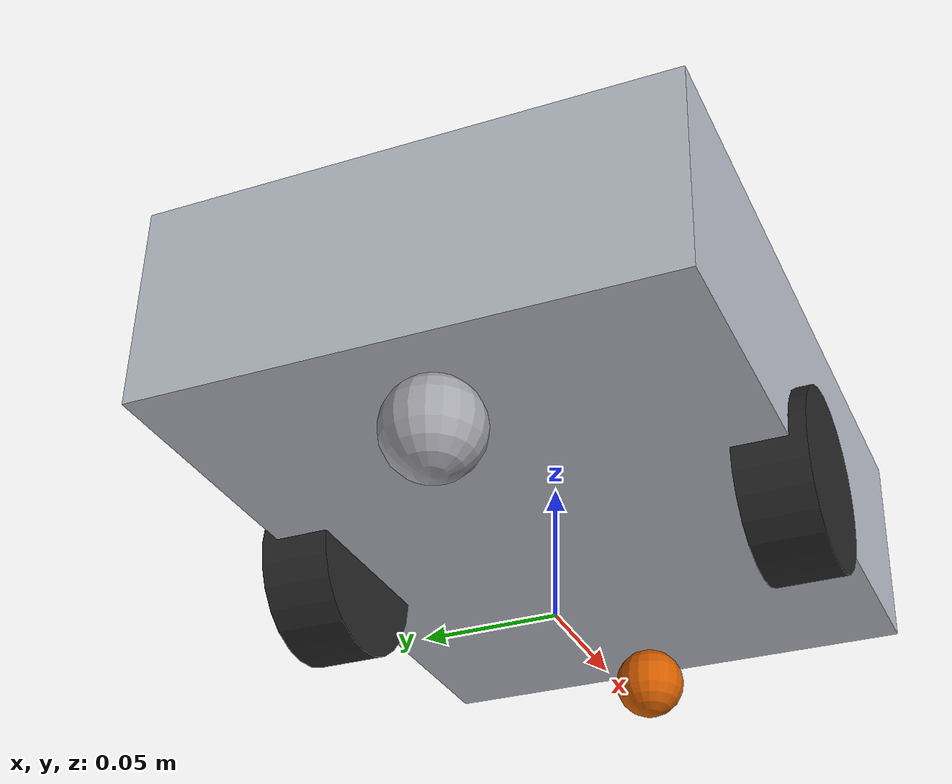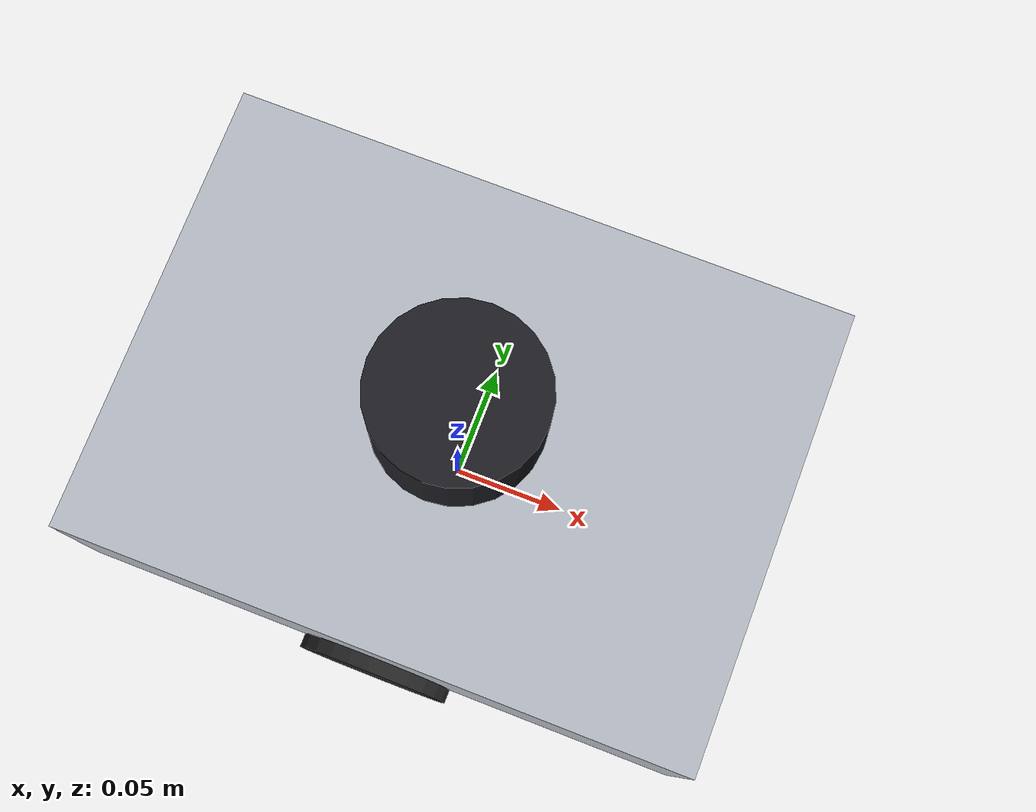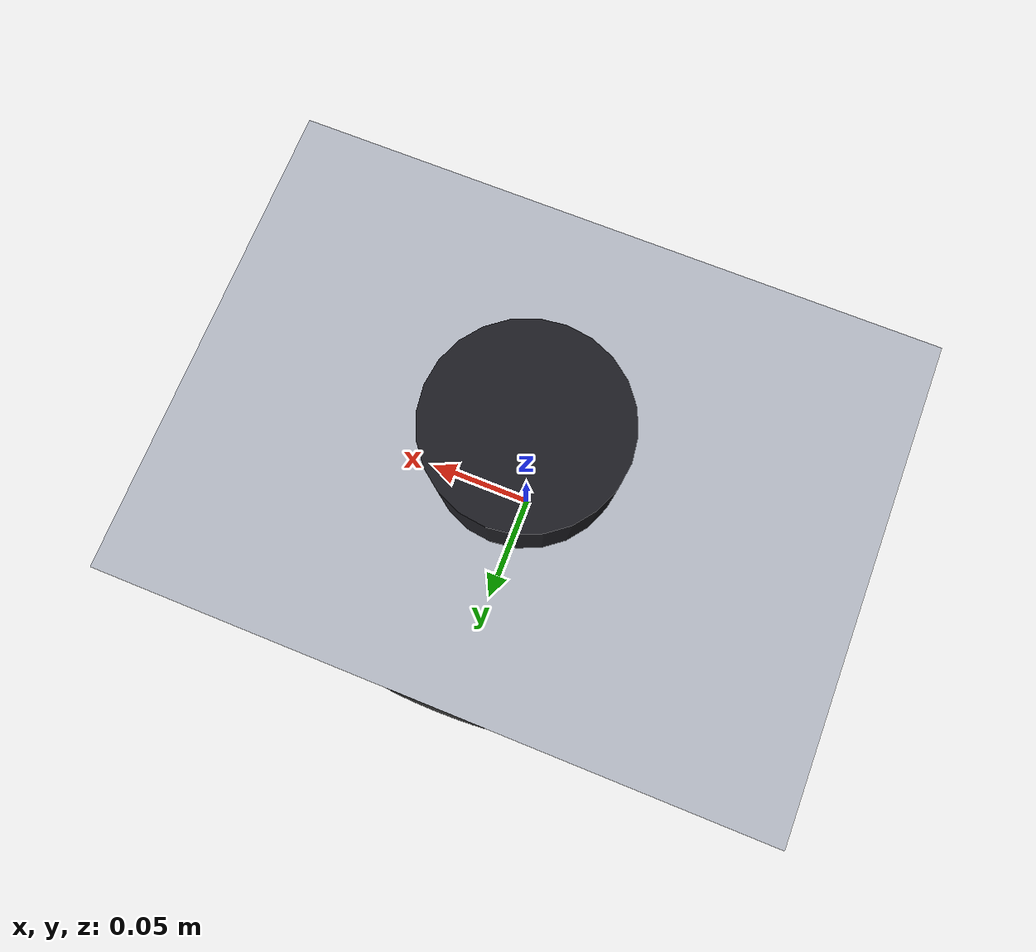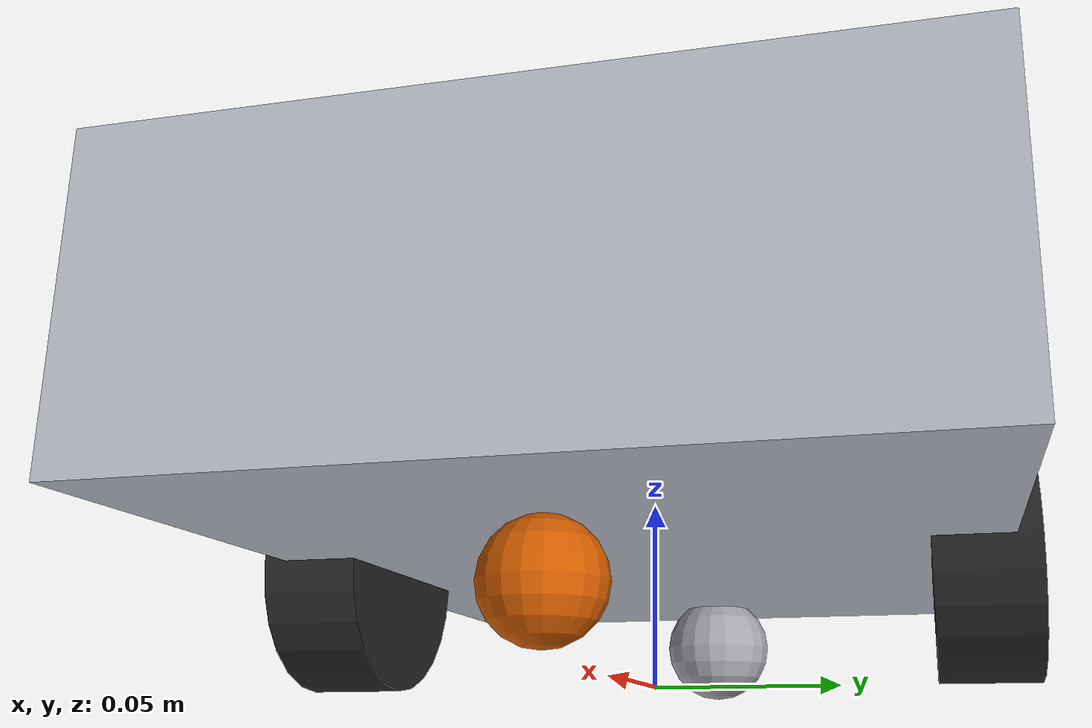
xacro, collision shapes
<?xml version="1.0"?>
<robot xmlns:xacro="http://www.ros.org/wiki/xacro" name="blind_assistant_robot">

  <!-- Materials -->
  <material name="chassis_metal">
    <color rgba="0.72 0.74 0.78 1.0"/>
  </material>
  <material name="tire_black">
    <color rgba="0.15 0.15 0.15 1.0"/>
  </material>
  <material name="caster_metal">
    <color rgba="0.65 0.65 0.68 1.0"/>
  </material>
  <material name="lidar_turret">
    <color rgba="0.12 0.12 0.14 1.0"/>
  </material>
  <material name="camera_lens">
    <color rgba="0.05 0.25 0.45 1.0"/>
  </material>

  <!-- Base footprint (Ground Projection) -->
  <link name="base_footprint"/>

  <joint name="base_joint" type="fixed">
    <parent link="base_footprint"/>
    <child link="base_link"/>
    <origin xyz="0 0 0.033" rpy="0 0 0"/>
  </joint>

  <!-- Base Link (SolidWorks Chassis Assembly) -->
  <!-- Combines Robot_body1, Robot_body2, Robot_body3/4, Side_pannel with 6 vents, and Slab -->
  <link name="base_link">
    <visual>
      <origin xyz="0 0 0" rpy="0 0 0"/>
      <geometry>
        <mesh filename="package://blind_assistant_robot/meshes/chassis.stl"/>
      </geometry>
      <material name="chassis_metal"/>
    </visual>
    <collision>
      <origin xyz="0 0 0.038" rpy="0 0 0"/>
      <geometry>
        <box size="0.26 0.19 0.076"/>
      </geometry>
    </collision>
    <inertial>
      <origin xyz="0 0 0.035" rpy="0 0 0"/>
      <mass value="2.8"/>
      <inertia ixx="0.016" ixy="0" ixz="0" iyy="0.018" iyz="0" izz="0.022"/>
    </inertial>
  </link>

  <!-- Left Wheel (from wheel.SLDPRT) -->
  <link name="left_wheel">
    <visual>
      <origin xyz="0 0 0" rpy="0 0 0"/>
      <geometry>
        <mesh filename="package://blind_assistant_robot/meshes/wheel.stl"/>
      </geometry>
      <material name="tire_black"/>
    </visual>
    <collision>
      <origin xyz="0 0 0" rpy="1.570796 0 0"/>
      <geometry>
        <cylinder radius="0.033" length="0.026"/>
      </geometry>
    </collision>
    <inertial>
      <mass value="0.18"/>
      <inertia ixx="0.00012" ixy="0" ixz="0" iyy="0.00012" iyz="0" izz="0.00018"/>
    </inertial>
  </link>

  <joint name="left_wheel_joint" type="continuous">
    <parent link="base_link"/>
    <child link="left_wheel"/>
    <origin xyz="0 0.088 0" rpy="0 0 0"/>
    <axis xyz="0 1 0"/>
  </joint>

  <!-- Right Wheel (from wheel.SLDPRT) -->
  <link name="right_wheel">
    <visual>
      <origin xyz="0 0 0" rpy="0 0 0"/>
      <geometry>
        <mesh filename="package://blind_assistant_robot/meshes/wheel.stl"/>
      </geometry>
      <material name="tire_black"/>
    </visual>
    <collision>
      <origin xyz="0 0 0" rpy="1.570796 0 0"/>
      <geometry>
        <cylinder radius="0.033" length="0.026"/>
      </geometry>
    </collision>
    <inertial>
      <mass value="0.18"/>
      <inertia ixx="0.00012" ixy="0" ixz="0" iyy="0.00012" iyz="0" izz="0.00018"/>
    </inertial>
  </link>

  <joint name="right_wheel_joint" type="continuous">
    <parent link="base_link"/>
    <child link="right_wheel"/>
    <origin xyz="0 -0.088 0" rpy="0 0 0"/>
    <axis xyz="0 1 0"/>
  </joint>

  <!-- Rear Caster Wheel (from 1.5 inch Caster Wheel.SLDPRT & HOUSING) -->
  <link name="rear_caster">
    <visual>
      <origin xyz="0 0 0" rpy="0 0 0"/>
      <geometry>
        <mesh filename="package://blind_assistant_robot/meshes/caster.stl"/>
      </geometry>
      <material name="caster_metal"/>
    </visual>
    <collision>
      <origin xyz="0 0 0" rpy="0 0 0"/>
      <geometry>
        <sphere radius="0.0175"/>
      </geometry>
    </collision>
    <inertial>
      <mass value="0.08"/>
      <inertia ixx="0.00002" ixy="0" ixz="0" iyy="0.00002" iyz="0" izz="0.00002"/>
    </inertial>
  </link>

  <joint name="rear_caster_joint" type="fixed">
    <parent link="base_link"/>
    <child link="rear_caster"/>
    <origin xyz="-0.10 0 -0.014" rpy="0 0 0"/>
  </joint>

  <!-- Front Support Contact (low friction skid contact) -->
  <link name="front_support">
    <collision>
      <geometry>
        <sphere radius="0.0135"/>
      </geometry>
    </collision>
    <inertial>
      <mass value="0.02"/>
      <inertia ixx="0.000005" ixy="0" ixz="0" iyy="0.000005" iyz="0" izz="0.000005"/>
    </inertial>
  </link>

  <joint name="front_support_joint" type="fixed">
    <parent link="base_link"/>
    <child link="front_support"/>
    <origin xyz="0.10 0 -0.018" rpy="0 0 0"/>
  </joint>

  <!-- YDLidar X4 Mount & Link (from LiDAR.SLDPRT mounted on Slab) -->
  <link name="laser_frame">
    <visual>
      <origin xyz="0 0 0" rpy="0 0 0"/>
      <geometry>
        <mesh filename="package://blind_assistant_robot/meshes/ydlidar_x4.stl"/>
      </geometry>
      <material name="lidar_turret"/>
    </visual>
    <collision>
      <origin xyz="0 0 0.02" rpy="0 0 0"/>
      <geometry>
        <cylinder radius="0.035" length="0.040"/>
      </geometry>
    </collision>
    <inertial>
      <mass value="0.22"/>
      <inertia ixx="0.0001" ixy="0" ixz="0" iyy="0.0001" iyz="0" izz="0.0001"/>
    </inertial>
  </link>

  <joint name="laser_joint" type="fixed">
    <parent link="base_link"/>
    <child link="laser_frame"/>
    <origin xyz="0.0 0 0.081" rpy="0 0 0"/>
  </joint>

  <!-- Camera Link (peering through front plate aperture) -->
  <link name="camera_link">
    <visual>
      <origin xyz="0 0 0" rpy="0 0 0"/>
      <geometry>
        <cylinder radius="0.009" length="0.008"/>
      </geometry>
      <material name="camera_lens"/>
    </visual>
    <collision>
      <geometry>
        <box size="0.02 0.03 0.025"/>
      </geometry>
    </collision>
    <inertial>
      <mass value="0.05"/>
      <inertia ixx="0.00001" ixy="0" ixz="0" iyy="0.00001" iyz="0" izz="0.00001"/>
    </inertial>
  </link>

  <joint name="camera_joint" type="fixed">
    <parent link="base_link"/>
    <child link="camera_link"/>
    <origin xyz="0.062 0 0.052" rpy="0 0 0"/>
  </joint>

  <!-- Gazebo RGB-D Depth Perception Camera Sensor (Intel RealSense D435i Style) -->
  <gazebo reference="camera_link">
    <sensor name="rgbd_camera" type="rgbd_camera">
      <always_on>true</always_on>
      <update_rate>15</update_rate>
      <visualize>true</visualize>
      <topic>camera</topic>
      <pose>0 0 0 0 0 0</pose>
      <camera>
        <horizontal_fov>1.15</horizontal_fov>
        <image>
          <width>640</width>
          <height>480</height>
          <format>R8G8B8</format>
        </image>
        <clip>
          <near>0.10</near>
          <far>10.0</far>
        </clip>
        <depth_camera>
          <clip>
            <near>0.10</near>
            <far>10.0</far>
          </clip>
        </depth_camera>
      </camera>
      <frame_id>camera_link</frame_id>
    </sensor>
  </gazebo>

  <!-- Gazebo Material Styling -->
  <gazebo reference="base_link">
    <visual>
      <material>
        <ambient>0.65 0.68 0.72 1.0</ambient>
        <diffuse>0.72 0.75 0.78 1.0</diffuse>
        <specular>0.3 0.3 0.35 1.0</specular>
      </material>
    </visual>
  </gazebo>

  <gazebo reference="left_wheel">
    <visual>
      <material>
        <ambient>0.12 0.12 0.12 1.0</ambient>
        <diffuse>0.18 0.18 0.18 1.0</diffuse>
      </material>
    </visual>
    <surface>
      <friction>
        <ode>
          <mu>1.2</mu>
          <mu2>1.2</mu2>
        </ode>
      </friction>
    </surface>
  </gazebo>

  <gazebo reference="right_wheel">
    <visual>
      <material>
        <ambient>0.12 0.12 0.12 1.0</ambient>
        <diffuse>0.18 0.18 0.18 1.0</diffuse>
      </material>
    </visual>
    <surface>
      <friction>
        <ode>
          <mu>1.2</mu>
          <mu2>1.2</mu2>
        </ode>
      </friction>
    </surface>
  </gazebo>

  <gazebo reference="rear_caster">
    <visual>
      <material>
        <ambient>0.6 0.6 0.65 1.0</ambient>
        <diffuse>0.7 0.7 0.72 1.0</diffuse>
      </material>
    </visual>
    <surface>
      <friction>
        <ode>
          <mu>0.001</mu>
          <mu2>0.001</mu2>
        </ode>
      </friction>
    </surface>
  </gazebo>

  <gazebo reference="front_support">
    <surface>
      <friction>
        <ode>
          <mu>0.001</mu>
          <mu2>0.001</mu2>
        </ode>
      </friction>
    </surface>
  </gazebo>

  <gazebo reference="laser_frame">
    <visual>
      <material>
        <ambient>0.08 0.08 0.1 1.0</ambient>
        <diffuse>0.12 0.12 0.14 1.0</diffuse>
      </material>
    </visual>
    <sensor name="ydlidar_x4" type="gpu_lidar">
      <pose>0 0 0.02 0 0 0</pose>
      <topic>/scan</topic>
      <visualize>true</visualize>
      <update_rate>10</update_rate>
      <ray>
        <scan>
          <horizontal>
            <samples>360</samples>
            <resolution>1</resolution>
            <min_angle>-3.14159265</min_angle>
            <max_angle>3.14159265</max_angle>
          </horizontal>
        </scan>
        <range>
          <min>0.12</min>
          <max>10.0</max>
          <resolution>0.01</resolution>
        </range>
      </ray>
      <frame_id>laser_frame</frame_id>
    </sensor>
  </gazebo>

  <gazebo>
    <plugin filename="gz-sim-diff-drive-system" name="gz::sim::systems::DiffDrive">
      <left_joint>left_wheel_joint</left_joint>
      <right_joint>right_wheel_joint</right_joint>
      <wheel_separation>0.176</wheel_separation>
      <wheel_radius>0.033</wheel_radius>
      <max_linear_acceleration>1.2</max_linear_acceleration>
      <min_linear_acceleration>-1.2</min_linear_acceleration>
      <max_angular_acceleration>2.5</max_angular_acceleration>
      <min_angular_acceleration>-2.5</min_angular_acceleration>
      <max_linear_velocity>0.6</max_linear_velocity>
      <min_linear_velocity>-0.6</min_linear_velocity>
      <max_angular_velocity>1.5</max_angular_velocity>
      <min_angular_velocity>-1.5</min_angular_velocity>
      <max_torque>40.0</max_torque>
      <topic>/cmd_vel</topic>
      <odom_topic>/odom</odom_topic>
      <frame_id>odom</frame_id>
      <child_frame_id>base_footprint</child_frame_id>
      <odom_publisher_frequency>30</odom_publisher_frequency>
      <tf_topic>/tf</tf_topic>
    </plugin>

    <plugin filename="gz-sim-joint-state-publisher-system" name="gz::sim::systems::JointStatePublisher">
      <topic>joint_states</topic>
    </plugin>
  </gazebo>

</robot>
